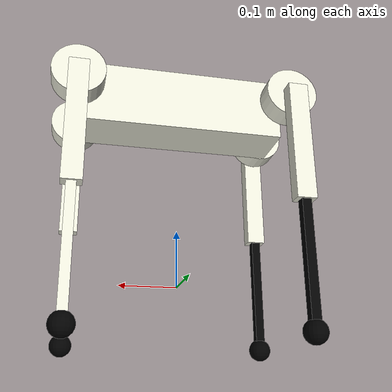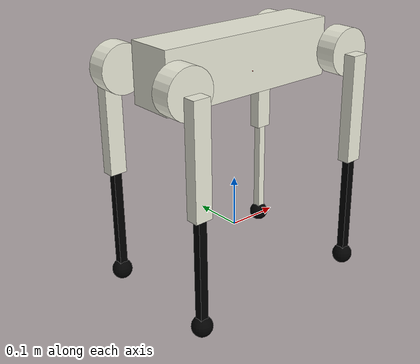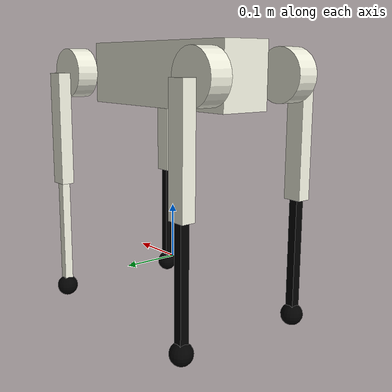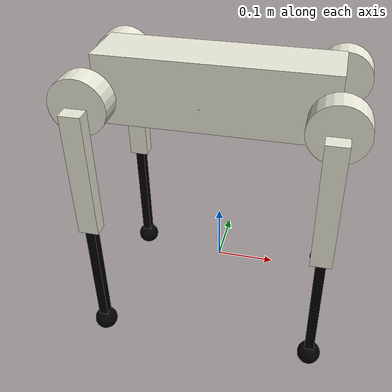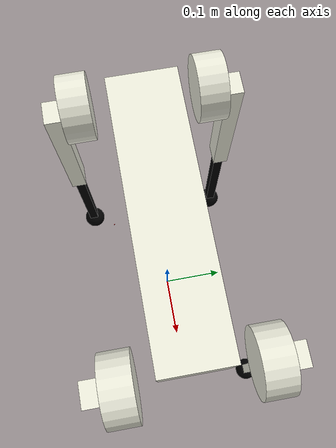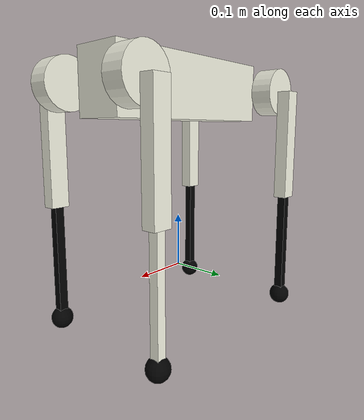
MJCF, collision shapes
<mujoco model="go1_description">
  <compiler angle="radian" meshdir="/home/kami/unitree_rl_dataset/unitree_rl_gym/resources/robots/go1/meshes/"/>

  <statistic meansize="0.144785" extent="1.23314" center="0.025392 2.0634e-05 -0.245975"/>
  <default>
    <joint damping="0.001" armature="0.01" frictionloss="0.1"/>
  </default>
  <asset>
    <mesh name="trunk" file="trunk.stl"/>
    <mesh name="hip" file="hip.stl"/>
    <mesh name="thigh_mirror" file="thigh_mirror.stl"/>
    <mesh name="calf" file="calf.stl"/>
    <mesh name="thigh" file="thigh.stl"/>
  </asset>

  <worldbody>
    <body name="base" pos= "0 0 0.34">
      <geom size="0.0005 0.0005 0.0005" type="box" contype="0" conaffinity="0" group="1" density="0"/>
      <!-- 加入浮动关节 -->
      <joint name="floating_base_joint" type="free" limited="false"/>
      <body name="trunk">
        <inertial pos="0.011611 0.004437 0.000108" quat="0.0111952 0.707128 -0.00936504 0.706935" mass="4.8" diaginertia="0.0446939 0.036525 0.0161135"/>
        <geom type="mesh" contype="0" conaffinity="0" group="1" density="0" rgba="0.913725 0.913725 0.847059 1" mesh="trunk"/>
        <geom size="0.1881 0.04675 0.057" type="box" rgba="0.913725 0.913725 0.847059 1"/>
        <body name="imu_link" pos="-0.01592 -0.06659 -0.00617">
          <inertial pos="0 0 0" mass="0.001" diaginertia="0.0001 0.0001 0.0001"/>
          <geom size="0.0005 0.0005 0.0005" type="box" contype="0" conaffinity="0" group="1" density="0" rgba="0.8 0 0 1"/>
        </body>
        <body name="FR_hip" pos="0.1881 -0.04675 0">
          <inertial pos="-0.00541 0.00074 6e-06" quat="0.506126 0.507401 0.493705 0.492582" mass="0.510299" diaginertia="0.000591107 0.000396595 0.000305077"/>
          <joint name="FR_hip_joint" pos="0 0 0" axis="1 0 0" range="-0.802851 0.802851" actuatorfrcrange="-33.5 33.5"/>
          <geom quat="0 1 0 0" type="mesh" contype="0" conaffinity="0" group="1" density="0" rgba="0.913725 0.913725 0.847059 1" mesh="hip"/>
          <geom size="0.046 0.02" pos="0 -0.045 0" quat="0.707107 0.707107 0 0" type="cylinder" rgba="0.913725 0.913725 0.847059 1"/>
          <body name="FR_thigh_shoulder" pos="0 -0.08 0"/>
          <body name="FR_thigh" pos="0 -0.08 0">
            <inertial pos="-0.003468 0.018947 -0.032736" quat="0.999266 0.00067676 -0.0382978 0.000639813" mass="0.898919" diaginertia="0.00542178 0.00514246 0.000998869"/>
            <joint name="FR_thigh_joint" pos="0 0 0" axis="0 1 0" range="-1.0472 4.18879" actuatorfrcrange="-33.5 33.5"/>
            <geom type="mesh" contype="0" conaffinity="0" group="1" density="0" rgba="0.913725 0.913725 0.847059 1" mesh="thigh_mirror"/>
            <geom size="0.1065 0.01225 0.017" pos="0 0 -0.1065" quat="0.707107 0 0.707107 0" type="box" rgba="0.913725 0.913725 0.847059 1"/>
            <body name="FR_calf" pos="0 0 -0.213">
              <inertial pos="0.006286 0.001307 -0.122269" quat="0.764505 0.00891446 0.01674 0.644338" mass="0.158015" diaginertia="0.00362744 0.00361214 2.9993e-05"/>
              <joint name="FR_calf_joint" pos="0 0 0" axis="0 1 0" range="-2.69653 -0.916298" actuatorfrcrange="-33.5 33.5"/>
              <geom type="mesh" contype="0" conaffinity="0" group="1" density="0" rgba="0 0 0 1" mesh="calf"/>
              <geom size="0.1065 0.008 0.008" pos="0 0 -0.1065" quat="0.707107 0 0.707107 0" type="box" rgba="0 0 0 1"/>
              <body name="FR_foot" pos="0 0 -0.213">
                <inertial pos="0 0 0" mass="0.06" diaginertia="9.6e-06 9.6e-06 9.6e-06"/>
                <geom size="0.01" contype="0" conaffinity="0" group="1" density="0" rgba="0 0 0 1"/>
                <geom size="0.02" rgba="0 0 0 1"/>
              </body>
            </body>
          </body>
        </body>
        <body name="FL_hip" pos="0.1881 0.04675 0">
          <inertial pos="-0.00541 -0.00074 6e-06" quat="0.492582 0.493705 0.507401 0.506126" mass="0.510299" diaginertia="0.000591107 0.000396595 0.000305077"/>
          <joint name="FL_hip_joint" pos="0 0 0" axis="1 0 0" range="-0.802851 0.802851" actuatorfrcrange="-33.5 33.5"/>
          <geom type="mesh" contype="0" conaffinity="0" group="1" density="0" rgba="0.913725 0.913725 0.847059 1" mesh="hip"/>
          <geom size="0.046 0.02" pos="0 0.045 0" quat="0.707107 0.707107 0 0" type="cylinder" rgba="0.913725 0.913725 0.847059 1"/>
          <body name="FL_thigh_shoulder" pos="0 0.08 0"/>
          <body name="FL_thigh" pos="0 0.08 0">
            <inertial pos="-0.003468 -0.018947 -0.032736" quat="0.999266 -0.00067676 -0.0382978 -0.000639813" mass="0.898919" diaginertia="0.00542178 0.00514246 0.000998869"/>
            <joint name="FL_thigh_joint" pos="0 0 0" axis="0 1 0" range="-1.0472 4.18879" actuatorfrcrange="-33.5 33.5"/>
            <geom type="mesh" contype="0" conaffinity="0" group="1" density="0" rgba="0.913725 0.913725 0.847059 1" mesh="thigh"/>
            <geom size="0.1065 0.01225 0.017" pos="0 0 -0.1065" quat="0.707107 0 0.707107 0" type="box" rgba="0.913725 0.913725 0.847059 1"/>
            <body name="FL_calf" pos="0 0 -0.213">
              <inertial pos="0.006286 0.001307 -0.122269" quat="0.764505 0.00891446 0.01674 0.644338" mass="0.158015" diaginertia="0.00362744 0.00361214 2.9993e-05"/>
              <joint name="FL_calf_joint" pos="0 0 0" axis="0 1 0" range="-2.69653 -0.916298" actuatorfrcrange="-33.5 33.5"/>
              <geom type="mesh" contype="0" conaffinity="0" group="1" density="0" rgba="0.913725 0.913725 0.847059 1" mesh="calf"/>
              <geom size="0.1065 0.008 0.008" pos="0 0 -0.1065" quat="0.707107 0 0.707107 0" type="box" rgba="0.913725 0.913725 0.847059 1"/>
              <body name="FL_foot" pos="0 0 -0.213">
                <inertial pos="0 0 0" mass="0.06" diaginertia="9.6e-06 9.6e-06 9.6e-06"/>
                <geom size="0.01" contype="0" conaffinity="0" group="1" density="0" rgba="0 0 0 1"/>
                <geom size="0.02" rgba="0 0 0 1"/>
              </body>
            </body>
          </body>
        </body>
        <body name="RR_hip" pos="-0.1881 -0.04675 0">
          <inertial pos="0.00541 0.00074 6e-06" quat="0.493705 0.492582 0.506126 0.507401" mass="0.510299" diaginertia="0.000591107 0.000396595 0.000305077"/>
          <joint name="RR_hip_joint" pos="0 0 0" axis="1 0 0" range="-0.802851 0.802851" actuatorfrcrange="-33.5 33.5"/>
          <geom quat="0 0 0 -1" type="mesh" contype="0" conaffinity="0" group="1" density="0" rgba="0.913725 0.913725 0.847059 1" mesh="hip"/>
          <geom size="0.046 0.02" pos="0 -0.045 0" quat="0.707107 0.707107 0 0" type="cylinder" rgba="0.913725 0.913725 0.847059 1"/>
          <body name="RR_thigh_shoulder" pos="0 -0.08 0"/>
          <body name="RR_thigh" pos="0 -0.08 0">
            <inertial pos="-0.003468 0.018947 -0.032736" quat="0.999266 0.00067676 -0.0382978 0.000639813" mass="0.898919" diaginertia="0.00542178 0.00514246 0.000998869"/>
            <joint name="RR_thigh_joint" pos="0 0 0" axis="0 1 0" range="-1.0472 4.18879" actuatorfrcrange="-33.5 33.5"/>
            <geom type="mesh" contype="0" conaffinity="0" group="1" density="0" rgba="0.913725 0.913725 0.847059 1" mesh="thigh_mirror"/>
            <geom size="0.1065 0.01225 0.017" pos="0 0 -0.1065" quat="0.707107 0 0.707107 0" type="box" rgba="0.913725 0.913725 0.847059 1"/>
            <body name="RR_calf" pos="0 0 -0.213">
              <inertial pos="0.006286 0.001307 -0.122269" quat="0.764505 0.00891446 0.01674 0.644338" mass="0.158015" diaginertia="0.00362744 0.00361214 2.9993e-05"/>
              <joint name="RR_calf_joint" pos="0 0 0" axis="0 1 0" range="-2.69653 -0.916298" actuatorfrcrange="-33.5 33.5"/>
              <geom type="mesh" contype="0" conaffinity="0" group="1" density="0" rgba="0 0 0 1" mesh="calf"/>
              <geom size="0.1065 0.008 0.008" pos="0 0 -0.1065" quat="0.707107 0 0.707107 0" type="box" rgba="0 0 0 1"/>
              <body name="RR_foot" pos="0 0 -0.213">
                <inertial pos="0 0 0" mass="0.06" diaginertia="9.6e-06 9.6e-06 9.6e-06"/>
                <geom size="0.01" contype="0" conaffinity="0" group="1" density="0" rgba="0 0 0 1"/>
                <geom size="0.02" rgba="0 0 0 1"/>
              </body>
            </body>
          </body>
        </body>
        <body name="RL_hip" pos="-0.1881 0.04675 0">
          <inertial pos="0.00541 -0.00074 6e-06" quat="0.507401 0.506126 0.492582 0.493705" mass="0.510299" diaginertia="0.000591107 0.000396595 0.000305077"/>
          <joint name="RL_hip_joint" pos="0 0 0" axis="1 0 0" range="-0.802851 0.802851" actuatorfrcrange="-33.5 33.5"/>
          <geom quat="0 0 1 0" type="mesh" contype="0" conaffinity="0" group="1" density="0" rgba="0.913725 0.913725 0.847059 1" mesh="hip"/>
          <geom size="0.046 0.02" pos="0 0.045 0" quat="0.707107 0.707107 0 0" type="cylinder" rgba="0.913725 0.913725 0.847059 1"/>
          <body name="RL_thigh_shoulder" pos="0 0.08 0"/>
          <body name="RL_thigh" pos="0 0.08 0">
            <inertial pos="-0.003468 -0.018947 -0.032736" quat="0.999266 -0.00067676 -0.0382978 -0.000639813" mass="0.898919" diaginertia="0.00542178 0.00514246 0.000998869"/>
            <joint name="RL_thigh_joint" pos="0 0 0" axis="0 1 0" range="-1.0472 4.18879" actuatorfrcrange="-33.5 33.5"/>
            <geom type="mesh" contype="0" conaffinity="0" group="1" density="0" rgba="0.913725 0.913725 0.847059 1" mesh="thigh"/>
            <geom size="0.1065 0.01225 0.017" pos="0 0 -0.1065" quat="0.707107 0 0.707107 0" type="box" rgba="0.913725 0.913725 0.847059 1"/>
            <body name="RL_calf" pos="0 0 -0.213">
              <inertial pos="0.006286 0.001307 -0.122269" quat="0.764505 0.00891446 0.01674 0.644338" mass="0.158015" diaginertia="0.00362744 0.00361214 2.9993e-05"/>
              <joint name="RL_calf_joint" pos="0 0 0" axis="0 1 0" range="-2.69653 -0.916298" actuatorfrcrange="-33.5 33.5"/>
              <geom type="mesh" contype="0" conaffinity="0" group="1" density="0" rgba="0 0 0 1" mesh="calf"/>
              <geom size="0.1065 0.008 0.008" pos="0 0 -0.1065" quat="0.707107 0 0.707107 0" type="box" rgba="0 0 0 1"/>
              <body name="RL_foot" pos="0 0 -0.213">
                <inertial pos="0 0 0" mass="0.06" diaginertia="9.6e-06 9.6e-06 9.6e-06"/>
                <geom size="0.01" contype="0" conaffinity="0" group="1" density="0" rgba="0 0 0 1"/>
                <geom size="0.02" rgba="0 0 0 1"/>
              </body>
            </body>
          </body>
        </body>
      </body>
    </body>
  </worldbody>
  <!-- 加入电机 -->
  <actuator>

    <motor name="FR_hip_joint" joint="FR_hip_joint"/>
    <motor name="FR_thigh_joint" joint="FR_thigh_joint"/>
    <motor name="FR_calf_joint" joint="FR_calf_joint"/>

    <motor name="FL_hip_joint" joint="FL_hip_joint"/>
    <motor name="FL_thigh_joint" joint="FL_thigh_joint"/>
    <motor name="FL_calf_joint" joint="FL_calf_joint"/>

    <motor name="RR_hip_joint" joint="RR_hip_joint"/>
    <motor name="RR_thigh_joint" joint="RR_thigh_joint"/>
    <motor name="RR_calf_joint" joint="RR_calf_joint"/>

    <motor name="RL_hip_joint" joint="RL_hip_joint"/>
    <motor name="RL_thigh_joint" joint="RL_thigh_joint"/>
    <motor name="RL_calf_joint" joint="RL_calf_joint"/>

  </actuator>
</mujoco>
